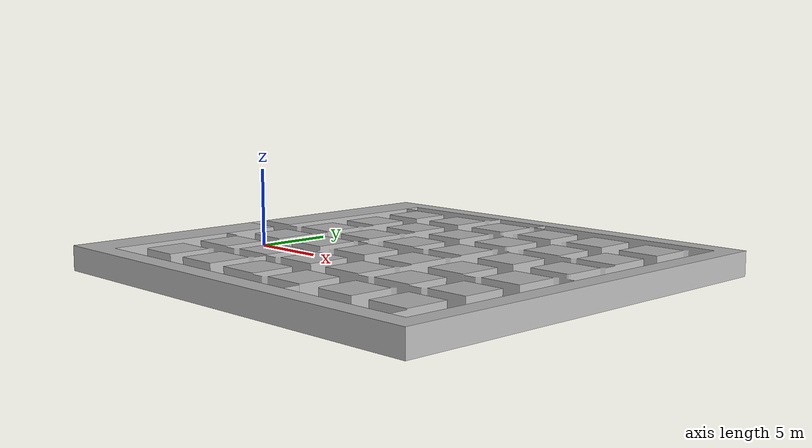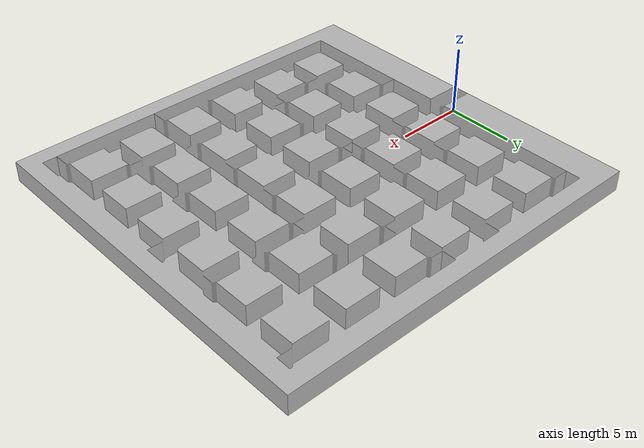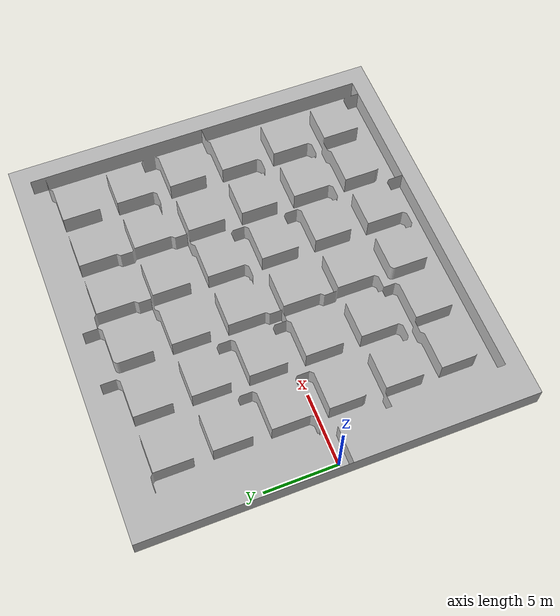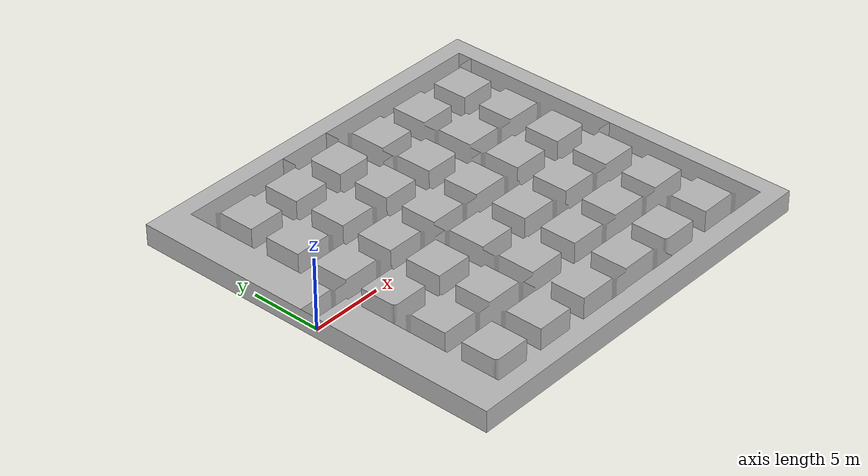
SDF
<sdf version='1.5'>
  <!-- Draw Model -->
  <model name="mazeA">
    <static>true</static>
    <link name="mazeA">
      <collision name="collision">
        <geometry>
          <mesh>
            <uri>model://turtlebot3_maze2/mazeA/mazeA.stl</uri>
          </mesh>
        </geometry>
      </collision>

      <visual name="visual">
        <geometry>
          <mesh>
            <uri>model://turtlebot3_maze2/mazeA/mazeA.dae</uri>
          </mesh>
        </geometry>
      </visual>
    </link>
  </model>
</sdf>
